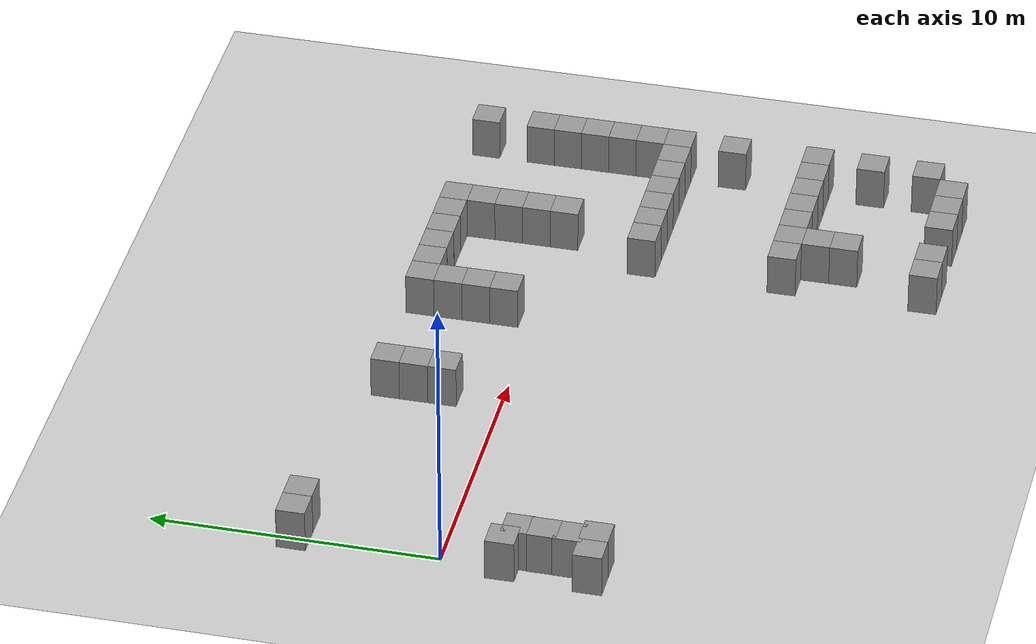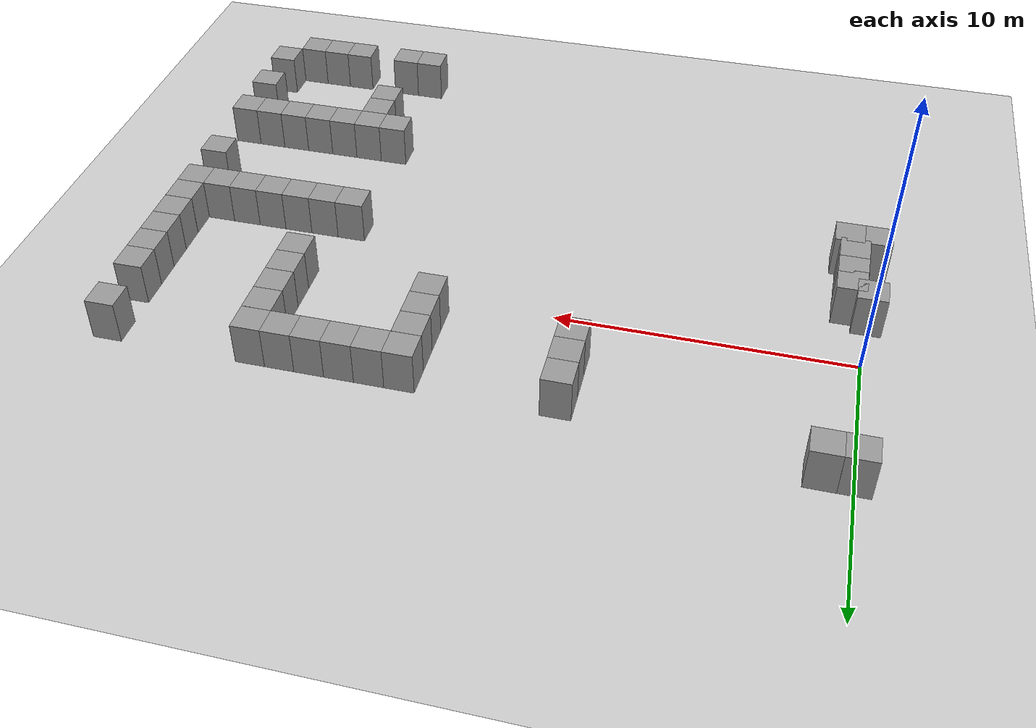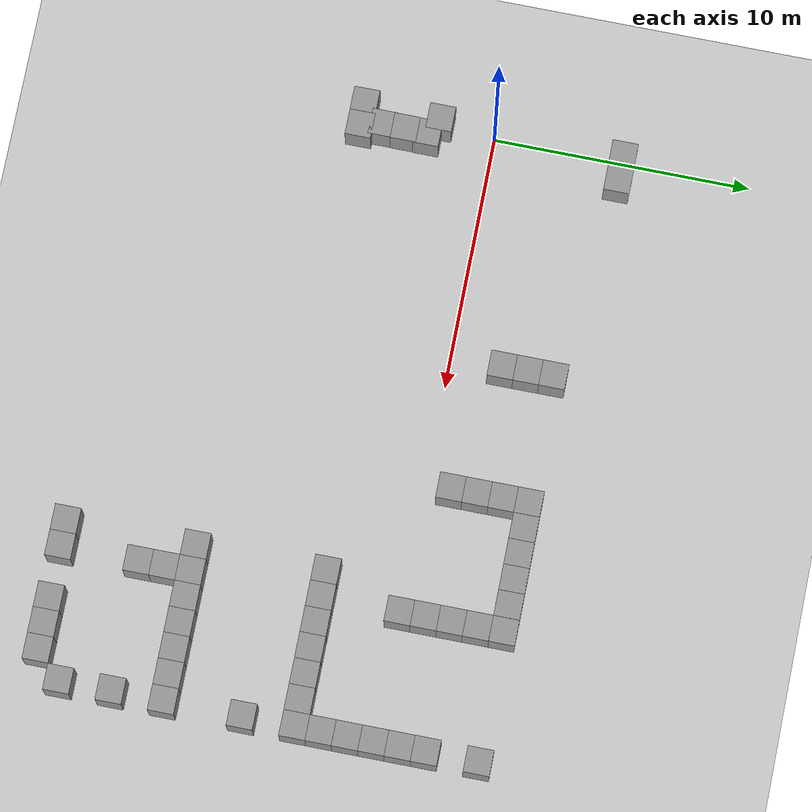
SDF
<sdf version="1.4">
 <world name="default">
  <model name="ground_plane">
   <static>1</static>
   <link name="link">
    <collision name="collision">
     <geometry><plane><normal>0 0 1</normal><size>100 100</size></plane></geometry>
     <surface><friction><ode><mu>100</mu><mu2>50</mu2></ode></friction></surface>
    </collision>
    <visual name="visual">
     <cast_shadows>0</cast_shadows>
     <geometry><plane><normal>0 0 1</normal><size>100 100</size></plane></geometry>
     <material>
      <script><uri>file://media/materials/scripts/gazebo.material</uri><name>Gazebo/Grey</name></script>
     </material>
    </visual>
    <velocity_decay><linear>0</linear><angular>0</angular></velocity_decay>
   </link>
  </model>
  <model name="unit_box_6">
   <pose>-0.01622 4.99333 0.5 0 0 -0.000328</pose>
   <static>1</static>
   <link name="link">
    <inertial>
     <mass>1</mass>
     <inertia><ixx>1</ixx><ixy>0</ixy><ixz>0</ixz><iyy>1</iyy><iyz>0</iyz><izz>1</izz></inertia>
    </inertial>
    <collision name="collision"><geometry><box><size>1 1 2</size></box></geometry></collision>
    <visual name="visual">
     <geometry><box><size>1 1 2</size></box></geometry>
     <material>
      <script><uri>file://media/materials/scripts/gazebo.material</uri><name>Gazebo/Grey</name></script>
     </material>
    </visual>
    <velocity_decay><linear>0</linear><angular>0</angular></velocity_decay>
   </link>
   <static>0</static>
  </model>
  <model name="unit_box_7">
   <pose>0.984482 4.99573 0.5 0 0 -0.000753</pose>
   <static>1</static>
   <link name="link">
    <inertial>
     <mass>1</mass>
     <inertia><ixx>1</ixx><ixy>0</ixy><ixz>0</ixz><iyy>1</iyy><iyz>0</iyz><izz>1</izz></inertia>
    </inertial>
    <collision name="collision"><geometry><box><size>1 1 2</size></box></geometry></collision>
    <visual name="visual">
     <geometry><box><size>1 1 2</size></box></geometry>
     <material>
      <script><uri>file://media/materials/scripts/gazebo.material</uri><name>Gazebo/Grey</name></script>
     </material>
    </visual>
    <velocity_decay><linear>0</linear><angular>0</angular></velocity_decay>
   </link>
   <static>0</static>
  </model>
  <model name="unit_box_9">
   <pose>-0.110008 -2.15315 0.5 0 0 -0.000565</pose>
   <static>1</static>
   <link name="link">
    <inertial>
     <mass>1</mass>
     <inertia><ixx>1</ixx><ixy>0</ixy><ixz>0</ixz><iyy>1</iyy><iyz>0</iyz><izz>1</izz></inertia>
    </inertial>
    <collision name="collision"><geometry><box><size>1 1 2</size></box></geometry></collision>
    <visual name="visual">
     <geometry><box><size>1 1 2</size></box></geometry>
     <material>
      <script><uri>file://media/materials/scripts/gazebo.material</uri><name>Gazebo/Grey</name></script>
     </material>
    </visual>
    <velocity_decay><linear>0</linear><angular>0</angular></velocity_decay>
   </link>
   <static>0</static>
  </model>
  <model name="unit_box_29">
   <pose>0.538897 -4.28868 0.5 0 0 -1.1e-05</pose>
   <static>1</static>
   <link name="link">
    <inertial>
     <mass>1</mass>
     <inertia><ixx>1</ixx><ixy>0</ixy><ixz>0</ixz><iyy>1</iyy><iyz>0</iyz><izz>1</izz></inertia>
    </inertial>
    <collision name="collision"><geometry><box><size>1 1 2</size></box></geometry></collision>
    <visual name="visual">
     <geometry><box><size>1 1 2</size></box></geometry>
     <material>
      <script><uri>file://media/materials/scripts/gazebo.material</uri><name>Gazebo/Grey</name></script>
     </material>
    </visual>
    <velocity_decay><linear>0</linear><angular>0</angular></velocity_decay>
   </link>
   <static>0</static>
  </model>
  <model name="unit_box_30">
   <pose>8.99995 1.99999 0.5 0 0 -7e-06</pose>
   <static>1</static>
   <link name="link">
    <inertial>
     <mass>1</mass>
     <inertia><ixx>1</ixx><ixy>0</ixy><ixz>0</ixz><iyy>1</iyy><iyz>0</iyz><izz>1</izz></inertia>
    </inertial>
    <collision name="collision"><geometry><box><size>1 1 2</size></box></geometry></collision>
    <visual name="visual">
     <geometry><box><size>1 1 2</size></box></geometry>
     <material>
      <script><uri>file://media/materials/scripts/gazebo.material</uri><name>Gazebo/Grey</name></script>
     </material>
    </visual>
    <velocity_decay><linear>0</linear><angular>0</angular></velocity_decay>
   </link>
   <static>0</static>
  </model>
  <model name="unit_box_31">
   <pose>8.99997 3 0.5 0 0 -6e-06</pose>
   <static>1</static>
   <link name="link">
    <inertial>
     <mass>1</mass>
     <inertia><ixx>1</ixx><ixy>0</ixy><ixz>0</ixz><iyy>1</iyy><iyz>0</iyz><izz>1</izz></inertia>
    </inertial>
    <collision name="collision"><geometry><box><size>1 1 2</size></box></geometry></collision>
    <visual name="visual">
     <geometry><box><size>1 1 2</size></box></geometry>
     <material>
      <script><uri>file://media/materials/scripts/gazebo.material</uri><name>Gazebo/Grey</name></script>
     </material>
    </visual>
    <velocity_decay><linear>0</linear><angular>0</angular></velocity_decay>
   </link>
   <static>0</static>
  </model>
  <model name="unit_box_32">
   <pose>8.99997 4 0.5 0 0 -8e-06</pose>
   <static>1</static>
   <link name="link">
    <inertial>
     <mass>1</mass>
     <inertia><ixx>1</ixx><ixy>0</ixy><ixz>0</ixz><iyy>1</iyy><iyz>0</iyz><izz>1</izz></inertia>
    </inertial>
    <collision name="collision"><geometry><box><size>1 1 2</size></box></geometry></collision>
    <visual name="visual">
     <geometry><box><size>1 1 2</size></box></geometry>
     <material>
      <script><uri>file://media/materials/scripts/gazebo.material</uri><name>Gazebo/Grey</name></script>
     </material>
    </visual>
    <velocity_decay><linear>0</linear><angular>0</angular></velocity_decay>
   </link>
   <static>0</static>
  </model>
  <model name="unit_box_41">
   <pose>0.563643 -2.53694 0.5 0 -0 0.002598</pose>
   <static>1</static>
   <link name="link">
    <inertial>
     <mass>1</mass>
     <inertia><ixx>1</ixx><ixy>0</ixy><ixz>0</ixz><iyy>1</iyy><iyz>0</iyz><izz>1</izz></inertia>
    </inertial>
    <collision name="collision"><geometry><box><size>1 1 2</size></box></geometry></collision>
    <visual name="visual">
     <geometry><box><size>1 1 2</size></box></geometry>
     <material>
      <script><uri>file://media/materials/scripts/gazebo.material</uri><name>Gazebo/Grey</name></script>
     </material>
    </visual>
    <velocity_decay><linear>0</linear><angular>0</angular></velocity_decay>
   </link>
   <static>0</static>
  </model>
  <model name="unit_box_129">
   <pose>0.548345 -3.41757 0.5 0 0 -1.3e-05</pose>
   <static>1</static>
   <link name="link">
    <inertial>
     <mass>1</mass>
     <inertia><ixx>1</ixx><ixy>0</ixy><ixz>0</ixz><iyy>1</iyy><iyz>0</iyz><izz>1</izz></inertia>
    </inertial>
    <collision name="collision"><geometry><box><size>1 1 2</size></box></geometry></collision>
    <visual name="visual">
     <geometry><box><size>1 1 2</size></box></geometry>
     <material>
      <script><uri>file://media/materials/scripts/gazebo.material</uri><name>Gazebo/Grey</name></script>
     </material>
    </visual>
    <velocity_decay><linear>0</linear><angular>0</angular></velocity_decay>
   </link>
   <static>0</static>
  </model>
  <model name="unit_box_173">
   <pose>13.9973 3.99985 0.5 0 -0 0.000731</pose>
   <static>1</static>
   <link name="link">
    <inertial>
     <mass>1</mass>
     <inertia><ixx>1</ixx><ixy>0</ixy><ixz>0</ixz><iyy>1</iyy><iyz>0</iyz><izz>1</izz></inertia>
    </inertial>
    <collision name="collision"><geometry><box><size>1 1 2</size></box></geometry></collision>
    <visual name="visual">
     <geometry><box><size>1 1 2</size></box></geometry>
     <material>
      <script><uri>file://media/materials/scripts/gazebo.material</uri><name>Gazebo/Grey</name></script>
     </material>
    </visual>
    <velocity_decay><linear>0</linear><angular>0</angular></velocity_decay>
   </link>
   <static>0</static>
  </model>
  <model name="unit_box_174">
   <pose>13.9996 2.99959 0.5 0 -0 0.000224</pose>
   <static>1</static>
   <link name="link">
    <inertial>
     <mass>1</mass>
     <inertia><ixx>1</ixx><ixy>0</ixy><ixz>0</ixz><iyy>1</iyy><iyz>0</iyz><izz>1</izz></inertia>
    </inertial>
    <collision name="collision"><geometry><box><size>1 1 2</size></box></geometry></collision>
    <visual name="visual">
     <geometry><box><size>1 1 2</size></box></geometry>
     <material>
      <script><uri>file://media/materials/scripts/gazebo.material</uri><name>Gazebo/Grey</name></script>
     </material>
    </visual>
    <velocity_decay><linear>0</linear><angular>0</angular></velocity_decay>
   </link>
   <static>0</static>
  </model>
  <model name="unit_box_175">
   <pose>13.9999 1.99957 0.5 0 -0 0.000199</pose>
   <static>1</static>
   <link name="link">
    <inertial>
     <mass>1</mass>
     <inertia><ixx>1</ixx><ixy>0</ixy><ixz>0</ixz><iyy>1</iyy><iyz>0</iyz><izz>1</izz></inertia>
    </inertial>
    <collision name="collision"><geometry><box><size>1 1 2</size></box></geometry></collision>
    <visual name="visual">
     <geometry><box><size>1 1 2</size></box></geometry>
     <material>
      <script><uri>file://media/materials/scripts/gazebo.material</uri><name>Gazebo/Grey</name></script>
     </material>
    </visual>
    <velocity_decay><linear>0</linear><angular>0</angular></velocity_decay>
   </link>
   <static>0</static>
  </model>
  <model name="unit_box_176">
   <pose>14 0.999522 0.5 0 -0 9.7e-05</pose>
   <static>1</static>
   <link name="link">
    <inertial>
     <mass>1</mass>
     <inertia><ixx>1</ixx><ixy>0</ixy><ixz>0</ixz><iyy>1</iyy><iyz>0</iyz><izz>1</izz></inertia>
    </inertial>
    <collision name="collision"><geometry><box><size>1 1 2</size></box></geometry></collision>
    <visual name="visual">
     <geometry><box><size>1 1 2</size></box></geometry>
     <material>
      <script><uri>file://media/materials/scripts/gazebo.material</uri><name>Gazebo/Grey</name></script>
     </material>
    </visual>
    <velocity_decay><linear>0</linear><angular>0</angular></velocity_decay>
   </link>
   <static>0</static>
  </model>
  <model name="unit_box_177">
   <pose>14.9974 4.00019 0.5 0 -0 0.000926</pose>
   <static>1</static>
   <link name="link">
    <inertial>
     <mass>1</mass>
     <inertia><ixx>1</ixx><ixy>0</ixy><ixz>0</ixz><iyy>1</iyy><iyz>0</iyz><izz>1</izz></inertia>
    </inertial>
    <collision name="collision"><geometry><box><size>1 1 2</size></box></geometry></collision>
    <visual name="visual">
     <geometry><box><size>1 1 2</size></box></geometry>
     <material>
      <script><uri>file://media/materials/scripts/gazebo.material</uri><name>Gazebo/Grey</name></script>
     </material>
    </visual>
    <velocity_decay><linear>0</linear><angular>0</angular></velocity_decay>
   </link>
   <static>0</static>
  </model>
  <model name="unit_box_178">
   <pose>15.9974 4.00015 0.5 0 -0 0.001009</pose>
   <static>1</static>
   <link name="link">
    <inertial>
     <mass>1</mass>
     <inertia><ixx>1</ixx><ixy>0</ixy><ixz>0</ixz><iyy>1</iyy><iyz>0</iyz><izz>1</izz></inertia>
    </inertial>
    <collision name="collision"><geometry><box><size>1 1 2</size></box></geometry></collision>
    <visual name="visual">
     <geometry><box><size>1 1 2</size></box></geometry>
     <material>
      <script><uri>file://media/materials/scripts/gazebo.material</uri><name>Gazebo/Grey</name></script>
     </material>
    </visual>
    <velocity_decay><linear>0</linear><angular>0</angular></velocity_decay>
   </link>
   <static>0</static>
  </model>
  <model name="unit_box_179">
   <pose>16.9975 3.99993 0.5 0 -0 0.001188</pose>
   <static>1</static>
   <link name="link">
    <inertial>
     <mass>1</mass>
     <inertia><ixx>1</ixx><ixy>0</ixy><ixz>0</ixz><iyy>1</iyy><iyz>0</iyz><izz>1</izz></inertia>
    </inertial>
    <collision name="collision"><geometry><box><size>1 1 2</size></box></geometry></collision>
    <visual name="visual">
     <geometry><box><size>1 1 2</size></box></geometry>
     <material>
      <script><uri>file://media/materials/scripts/gazebo.material</uri><name>Gazebo/Grey</name></script>
     </material>
    </visual>
    <velocity_decay><linear>0</linear><angular>0</angular></velocity_decay>
   </link>
   <static>0</static>
  </model>
  <model name="unit_box_180">
   <pose>17.9977 4.00059 0.5 0 -0 0.001689</pose>
   <static>1</static>
   <link name="link">
    <inertial>
     <mass>1</mass>
     <inertia><ixx>1</ixx><ixy>0</ixy><ixz>0</ixz><iyy>1</iyy><iyz>0</iyz><izz>1</izz></inertia>
    </inertial>
    <collision name="collision"><geometry><box><size>1 1 2</size></box></geometry></collision>
    <visual name="visual">
     <geometry><box><size>1 1 2</size></box></geometry>
     <material>
      <script><uri>file://media/materials/scripts/gazebo.material</uri><name>Gazebo/Grey</name></script>
     </material>
    </visual>
    <velocity_decay><linear>0</linear><angular>0</angular></velocity_decay>
   </link>
   <static>0</static>
  </model>
  <model name="unit_box_181">
   <pose>18.9984 4.00065 0.5 0 -0 0.002125</pose>
   <static>1</static>
   <link name="link">
    <inertial>
     <mass>1</mass>
     <inertia><ixx>1</ixx><ixy>0</ixy><ixz>0</ixz><iyy>1</iyy><iyz>0</iyz><izz>1</izz></inertia>
    </inertial>
    <collision name="collision"><geometry><box><size>1 1 2</size></box></geometry></collision>
    <visual name="visual">
     <geometry><box><size>1 1 2</size></box></geometry>
     <material>
      <script><uri>file://media/materials/scripts/gazebo.material</uri><name>Gazebo/Grey</name></script>
     </material>
    </visual>
    <velocity_decay><linear>0</linear><angular>0</angular></velocity_decay>
   </link>
   <static>0</static>
  </model>
  <model name="unit_box_182">
   <pose>24.0018 -0.999661 0.5 0 -0 7.7e-05</pose>
   <static>1</static>
   <link name="link">
    <inertial>
     <mass>1</mass>
     <inertia><ixx>1</ixx><ixy>0</ixy><ixz>0</ixz><iyy>1</iyy><iyz>0</iyz><izz>1</izz></inertia>
    </inertial>
    <collision name="collision"><geometry><box><size>1 1 2</size></box></geometry></collision>
    <visual name="visual">
     <geometry><box><size>1 1 2</size></box></geometry>
     <material>
      <script><uri>file://media/materials/scripts/gazebo.material</uri><name>Gazebo/Grey</name></script>
     </material>
    </visual>
    <velocity_decay><linear>0</linear><angular>0</angular></velocity_decay>
   </link>
   <static>0</static>
  </model>
  <model name="unit_box_195">
   <pose>24.0001 4.00041 0.5 0 -0 5.9e-05</pose>
   <static>1</static>
   <link name="link">
    <inertial>
     <mass>1</mass>
     <inertia><ixx>1</ixx><ixy>0</ixy><ixz>0</ixz><iyy>1</iyy><iyz>0</iyz><izz>1</izz></inertia>
    </inertial>
    <collision name="collision"><geometry><box><size>1 1 2</size></box></geometry></collision>
    <visual name="visual">
     <geometry><box><size>1 1 2</size></box></geometry>
     <material>
      <script><uri>file://media/materials/scripts/gazebo.material</uri><name>Gazebo/Grey</name></script>
     </material>
    </visual>
    <velocity_decay><linear>0</linear><angular>0</angular></velocity_decay>
   </link>
   <static>0</static>
  </model>
  <model name="unit_box_197">
   <pose>23.9999 2.00038 0.5 0 -0 6.3e-05</pose>
   <static>1</static>
   <link name="link">
    <inertial>
     <mass>1</mass>
     <inertia><ixx>1</ixx><ixy>0</ixy><ixz>0</ixz><iyy>1</iyy><iyz>0</iyz><izz>1</izz></inertia>
    </inertial>
    <collision name="collision"><geometry><box><size>1 1 2</size></box></geometry></collision>
    <visual name="visual">
     <geometry><box><size>1 1 2</size></box></geometry>
     <material>
      <script><uri>file://media/materials/scripts/gazebo.material</uri><name>Gazebo/Grey</name></script>
     </material>
    </visual>
    <velocity_decay><linear>0</linear><angular>0</angular></velocity_decay>
   </link>
   <static>0</static>
  </model>
  <model name="unit_box_198">
   <pose>23.9999 1.00035 0.5 0 -0 7.1e-05</pose>
   <static>1</static>
   <link name="link">
    <inertial>
     <mass>1</mass>
     <inertia><ixx>1</ixx><ixy>0</ixy><ixz>0</ixz><iyy>1</iyy><iyz>0</iyz><izz>1</izz></inertia>
    </inertial>
    <collision name="collision"><geometry><box><size>1 1 2</size></box></geometry></collision>
    <visual name="visual">
     <geometry><box><size>1 1 2</size></box></geometry>
     <material>
      <script><uri>file://media/materials/scripts/gazebo.material</uri><name>Gazebo/Grey</name></script>
     </material>
    </visual>
    <velocity_decay><linear>0</linear><angular>0</angular></velocity_decay>
   </link>
   <static>0</static>
  </model>
  <model name="unit_box_199">
   <pose>23.9997 0.000344 0.5 0 -0 7.4e-05</pose>
   <static>1</static>
   <link name="link">
    <inertial>
     <mass>1</mass>
     <inertia><ixx>1</ixx><ixy>0</ixy><ixz>0</ixz><iyy>1</iyy><iyz>0</iyz><izz>1</izz></inertia>
    </inertial>
    <collision name="collision"><geometry><box><size>1 1 2</size></box></geometry></collision>
    <visual name="visual">
     <geometry><box><size>1 1 2</size></box></geometry>
     <material>
      <script><uri>file://media/materials/scripts/gazebo.material</uri><name>Gazebo/Grey</name></script>
     </material>
    </visual>
    <velocity_decay><linear>0</linear><angular>0</angular></velocity_decay>
   </link>
   <static>0</static>
  </model>
  <model name="unit_box_200">
   <pose>19 2.9997 0.5 0 -0 0.000228</pose>
   <static>1</static>
   <link name="link">
    <inertial>
     <mass>1</mass>
     <inertia><ixx>1</ixx><ixy>0</ixy><ixz>0</ixz><iyy>1</iyy><iyz>0</iyz><izz>1</izz></inertia>
    </inertial>
    <collision name="collision"><geometry><box><size>1 1 2</size></box></geometry></collision>
    <visual name="visual">
     <geometry><box><size>1 1 2</size></box></geometry>
     <material>
      <script><uri>file://media/materials/scripts/gazebo.material</uri><name>Gazebo/Grey</name></script>
     </material>
    </visual>
    <velocity_decay><linear>0</linear><angular>0</angular></velocity_decay>
   </link>
   <static>0</static>
  </model>
  <model name="unit_box_201">
   <pose>19 1.99966 0.5 0 -0 0.000143</pose>
   <static>1</static>
   <link name="link">
    <inertial>
     <mass>1</mass>
     <inertia><ixx>1</ixx><ixy>0</ixy><ixz>0</ixz><iyy>1</iyy><iyz>0</iyz><izz>1</izz></inertia>
    </inertial>
    <collision name="collision"><geometry><box><size>1 1 2</size></box></geometry></collision>
    <visual name="visual">
     <geometry><box><size>1 1 2</size></box></geometry>
     <material>
      <script><uri>file://media/materials/scripts/gazebo.material</uri><name>Gazebo/Grey</name></script>
     </material>
    </visual>
    <velocity_decay><linear>0</linear><angular>0</angular></velocity_decay>
   </link>
   <static>0</static>
  </model>
  <model name="unit_box_202">
   <pose>19 0.999639 0.5 0 -0 0.00011</pose>
   <static>1</static>
   <link name="link">
    <inertial>
     <mass>1</mass>
     <inertia><ixx>1</ixx><ixy>0</ixy><ixz>0</ixz><iyy>1</iyy><iyz>0</iyz><izz>1</izz></inertia>
    </inertial>
    <collision name="collision"><geometry><box><size>1 1 2</size></box></geometry></collision>
    <visual name="visual">
     <geometry><box><size>1 1 2</size></box></geometry>
     <material>
      <script><uri>file://media/materials/scripts/gazebo.material</uri><name>Gazebo/Grey</name></script>
     </material>
    </visual>
    <velocity_decay><linear>0</linear><angular>0</angular></velocity_decay>
   </link>
   <static>0</static>
  </model>
  <model name="unit_box_203">
   <pose>19 -0.000365 0.5 0 -0 0.000106</pose>
   <static>1</static>
   <link name="link">
    <inertial>
     <mass>1</mass>
     <inertia><ixx>1</ixx><ixy>0</ixy><ixz>0</ixz><iyy>1</iyy><iyz>0</iyz><izz>1</izz></inertia>
    </inertial>
    <collision name="collision"><geometry><box><size>1 1 2</size></box></geometry></collision>
    <visual name="visual">
     <geometry><box><size>1 1 2</size></box></geometry>
     <material>
      <script><uri>file://media/materials/scripts/gazebo.material</uri><name>Gazebo/Grey</name></script>
     </material>
    </visual>
    <velocity_decay><linear>0</linear><angular>0</angular></velocity_decay>
   </link>
   <static>0</static>
  </model>
  <model name="unit_box_204">
   <pose>24 -1.99999 0.5 0 -0 1e-06</pose>
   <static>1</static>
   <link name="link">
    <inertial>
     <mass>1</mass>
     <inertia><ixx>1</ixx><ixy>0</ixy><ixz>0</ixz><iyy>1</iyy><iyz>0</iyz><izz>1</izz></inertia>
    </inertial>
    <collision name="collision"><geometry><box><size>1 1 2</size></box></geometry></collision>
    <visual name="visual">
     <geometry><box><size>1 1 2</size></box></geometry>
     <material>
      <script><uri>file://media/materials/scripts/gazebo.material</uri><name>Gazebo/Grey</name></script>
     </material>
    </visual>
    <velocity_decay><linear>0</linear><angular>0</angular></velocity_decay>
   </link>
   <static>0</static>
  </model>
  <model name="unit_box_205">
   <pose>24 -2.99999 0.5 0 -0 1e-06</pose>
   <static>1</static>
   <link name="link">
    <inertial>
     <mass>1</mass>
     <inertia><ixx>1</ixx><ixy>0</ixy><ixz>0</ixz><iyy>1</iyy><iyz>0</iyz><izz>1</izz></inertia>
    </inertial>
    <collision name="collision"><geometry><box><size>1 1 2</size></box></geometry></collision>
    <visual name="visual">
     <geometry><box><size>1 1 2</size></box></geometry>
     <material>
      <script><uri>file://media/materials/scripts/gazebo.material</uri><name>Gazebo/Grey</name></script>
     </material>
    </visual>
    <velocity_decay><linear>0</linear><angular>0</angular></velocity_decay>
   </link>
   <static>0</static>
  </model>
  <model name="unit_box_207">
   <pose>24 -4.99999 0.5 0 0 -1e-06</pose>
   <static>1</static>
   <link name="link">
    <inertial>
     <mass>1</mass>
     <inertia><ixx>1</ixx><ixy>0</ixy><ixz>0</ixz><iyy>1</iyy><iyz>0</iyz><izz>1</izz></inertia>
    </inertial>
    <collision name="collision"><geometry><box><size>1 1 2</size></box></geometry></collision>
    <visual name="visual">
     <geometry><box><size>1 1 2</size></box></geometry>
     <material>
      <script><uri>file://media/materials/scripts/gazebo.material</uri><name>Gazebo/Grey</name></script>
     </material>
    </visual>
    <velocity_decay><linear>0</linear><angular>0</angular></velocity_decay>
   </link>
   <static>0</static>
  </model>
  <model name="unit_box_209">
   <pose>18 -3 0.5 0 0 -2e-06</pose>
   <static>1</static>
   <link name="link">
    <inertial>
     <mass>1</mass>
     <inertia><ixx>1</ixx><ixy>0</ixy><ixz>0</ixz><iyy>1</iyy><iyz>0</iyz><izz>1</izz></inertia>
    </inertial>
    <collision name="collision"><geometry><box><size>1 1 2</size></box></geometry></collision>
    <visual name="visual">
     <geometry><box><size>1 1 2</size></box></geometry>
     <material>
      <script><uri>file://media/materials/scripts/gazebo.material</uri><name>Gazebo/Grey</name></script>
     </material>
    </visual>
    <velocity_decay><linear>0</linear><angular>0</angular></velocity_decay>
   </link>
   <static>0</static>
  </model>
  <model name="unit_box_210">
   <pose>19 -3 0.5 0 0 -2e-06</pose>
   <static>1</static>
   <link name="link">
    <inertial>
     <mass>1</mass>
     <inertia><ixx>1</ixx><ixy>0</ixy><ixz>0</ixz><iyy>1</iyy><iyz>0</iyz><izz>1</izz></inertia>
    </inertial>
    <collision name="collision"><geometry><box><size>1 1 2</size></box></geometry></collision>
    <visual name="visual">
     <geometry><box><size>1 1 2</size></box></geometry>
     <material>
      <script><uri>file://media/materials/scripts/gazebo.material</uri><name>Gazebo/Grey</name></script>
     </material>
    </visual>
    <velocity_decay><linear>0</linear><angular>0</angular></velocity_decay>
   </link>
   <static>0</static>
  </model>
  <model name="unit_box_211">
   <pose>20 -3 0.5 0 0 -2e-06</pose>
   <static>1</static>
   <link name="link">
    <inertial>
     <mass>1</mass>
     <inertia><ixx>1</ixx><ixy>0</ixy><ixz>0</ixz><iyy>1</iyy><iyz>0</iyz><izz>1</izz></inertia>
    </inertial>
    <collision name="collision"><geometry><box><size>1 1 2</size></box></geometry></collision>
    <visual name="visual">
     <geometry><box><size>1 1 2</size></box></geometry>
     <material>
      <script><uri>file://media/materials/scripts/gazebo.material</uri><name>Gazebo/Grey</name></script>
     </material>
    </visual>
    <velocity_decay><linear>0</linear><angular>0</angular></velocity_decay>
   </link>
   <static>0</static>
  </model>
  <model name="unit_box_212">
   <pose>21 -3 0.5 0 0 -3e-06</pose>
   <static>1</static>
   <link name="link">
    <inertial>
     <mass>1</mass>
     <inertia><ixx>1</ixx><ixy>0</ixy><ixz>0</ixz><iyy>1</iyy><iyz>0</iyz><izz>1</izz></inertia>
    </inertial>
    <collision name="collision"><geometry><box><size>1 1 2</size></box></geometry></collision>
    <visual name="visual">
     <geometry><box><size>1 1 2</size></box></geometry>
     <material>
      <script><uri>file://media/materials/scripts/gazebo.material</uri><name>Gazebo/Grey</name></script>
     </material>
    </visual>
    <velocity_decay><linear>0</linear><angular>0</angular></velocity_decay>
   </link>
   <static>0</static>
  </model>
  <model name="unit_box_213">
   <pose>22 -3 0.5 0 0 -3e-06</pose>
   <static>1</static>
   <link name="link">
    <inertial>
     <mass>1</mass>
     <inertia><ixx>1</ixx><ixy>0</ixy><ixz>0</ixz><iyy>1</iyy><iyz>0</iyz><izz>1</izz></inertia>
    </inertial>
    <collision name="collision"><geometry><box><size>1 1 2</size></box></geometry></collision>
    <visual name="visual">
     <geometry><box><size>1 1 2</size></box></geometry>
     <material>
      <script><uri>file://media/materials/scripts/gazebo.material</uri><name>Gazebo/Grey</name></script>
     </material>
    </visual>
    <velocity_decay><linear>0</linear><angular>0</angular></velocity_decay>
   </link>
   <static>0</static>
  </model>
  <model name="unit_box_214">
   <pose>23 -3 0.5 0 0 -3e-06</pose>
   <static>1</static>
   <link name="link">
    <inertial>
     <mass>1</mass>
     <inertia><ixx>1</ixx><ixy>0</ixy><ixz>0</ixz><iyy>1</iyy><iyz>0</iyz><izz>1</izz></inertia>
    </inertial>
    <collision name="collision"><geometry><box><size>1 1 2</size></box></geometry></collision>
    <visual name="visual">
     <geometry><box><size>1 1 2</size></box></geometry>
     <material>
      <script><uri>file://media/materials/scripts/gazebo.material</uri><name>Gazebo/Grey</name></script>
     </material>
    </visual>
    <velocity_decay><linear>0</linear><angular>0</angular></velocity_decay>
   </link>
   <static>0</static>
  </model>
  <model name="unit_box_216">
   <pose>24 -8 0.5 0 0 -3e-06</pose>
   <static>1</static>
   <link name="link">
    <inertial>
     <mass>1</mass>
     <inertia><ixx>1</ixx><ixy>0</ixy><ixz>0</ixz><iyy>1</iyy><iyz>0</iyz><izz>1</izz></inertia>
    </inertial>
    <collision name="collision"><geometry><box><size>1 1 2</size></box></geometry></collision>
    <visual name="visual">
     <geometry><box><size>1 1 2</size></box></geometry>
     <material>
      <script><uri>file://media/materials/scripts/gazebo.material</uri><name>Gazebo/Grey</name></script>
     </material>
    </visual>
    <velocity_decay><linear>0</linear><angular>0</angular></velocity_decay>
   </link>
   <static>0</static>
  </model>
  <model name="unit_box_217">
   <pose>23 -8 0.5 0 -0 0</pose>
   <static>1</static>
   <link name="link">
    <inertial>
     <mass>1</mass>
     <inertia><ixx>1</ixx><ixy>0</ixy><ixz>0</ixz><iyy>1</iyy><iyz>0</iyz><izz>1</izz></inertia>
    </inertial>
    <collision name="collision"><geometry><box><size>1 1 2</size></box></geometry></collision>
    <visual name="visual">
     <geometry><box><size>1 1 2</size></box></geometry>
     <material>
      <script><uri>file://media/materials/scripts/gazebo.material</uri><name>Gazebo/Grey</name></script>
     </material>
    </visual>
    <velocity_decay><linear>0</linear><angular>0</angular></velocity_decay>
   </link>
   <static>0</static>
  </model>
  <model name="unit_box_218">
   <pose>22 -8.00001 0.5 0 0 -1e-06</pose>
   <static>1</static>
   <link name="link">
    <inertial>
     <mass>1</mass>
     <inertia><ixx>1</ixx><ixy>0</ixy><ixz>0</ixz><iyy>1</iyy><iyz>0</iyz><izz>1</izz></inertia>
    </inertial>
    <collision name="collision"><geometry><box><size>1 1 2</size></box></geometry></collision>
    <visual name="visual">
     <geometry><box><size>1 1 2</size></box></geometry>
     <material>
      <script><uri>file://media/materials/scripts/gazebo.material</uri><name>Gazebo/Grey</name></script>
     </material>
    </visual>
    <velocity_decay><linear>0</linear><angular>0</angular></velocity_decay>
   </link>
   <static>0</static>
  </model>
  <model name="unit_box_219">
   <pose>21 -8 0.5 0 0 -1e-06</pose>
   <static>1</static>
   <link name="link">
    <inertial>
     <mass>1</mass>
     <inertia><ixx>1</ixx><ixy>0</ixy><ixz>0</ixz><iyy>1</iyy><iyz>0</iyz><izz>1</izz></inertia>
    </inertial>
    <collision name="collision"><geometry><box><size>1 1 2</size></box></geometry></collision>
    <visual name="visual">
     <geometry><box><size>1 1 2</size></box></geometry>
     <material>
      <script><uri>file://media/materials/scripts/gazebo.material</uri><name>Gazebo/Grey</name></script>
     </material>
    </visual>
    <velocity_decay><linear>0</linear><angular>0</angular></velocity_decay>
   </link>
   <static>0</static>
  </model>
  <model name="unit_box_220">
   <pose>20 -8 0.500001 1e-06 -0 -1e-06</pose>
   <static>1</static>
   <link name="link">
    <inertial>
     <mass>1</mass>
     <inertia><ixx>1</ixx><ixy>0</ixy><ixz>0</ixz><iyy>1</iyy><iyz>0</iyz><izz>1</izz></inertia>
    </inertial>
    <collision name="collision"><geometry><box><size>1 1 2</size></box></geometry></collision>
    <visual name="visual">
     <geometry><box><size>1 1 2</size></box></geometry>
     <material>
      <script><uri>file://media/materials/scripts/gazebo.material</uri><name>Gazebo/Grey</name></script>
     </material>
    </visual>
    <velocity_decay><linear>0</linear><angular>0</angular></velocity_decay>
   </link>
   <static>0</static>
  </model>
  <model name="unit_box_221">
   <pose>19 -7.99999 0.5 0 -1e-06 -4e-06</pose>
   <static>1</static>
   <link name="link">
    <inertial>
     <mass>1</mass>
     <inertia><ixx>1</ixx><ixy>0</ixy><ixz>0</ixz><iyy>1</iyy><iyz>0</iyz><izz>1</izz></inertia>
    </inertial>
    <collision name="collision"><geometry><box><size>1 1 2</size></box></geometry></collision>
    <visual name="visual">
     <geometry><box><size>1 1 2</size></box></geometry>
     <material>
      <script><uri>file://media/materials/scripts/gazebo.material</uri><name>Gazebo/Grey</name></script>
     </material>
    </visual>
    <velocity_decay><linear>0</linear><angular>0</angular></velocity_decay>
   </link>
   <static>0</static>
  </model>
  <model name="unit_box_222">
   <pose>18 -8.00001 0.5 0 0 -2e-06</pose>
   <static>1</static>
   <link name="link">
    <inertial>
     <mass>1</mass>
     <inertia><ixx>1</ixx><ixy>0</ixy><ixz>0</ixz><iyy>1</iyy><iyz>0</iyz><izz>1</izz></inertia>
    </inertial>
    <collision name="collision"><geometry><box><size>1 1 2</size></box></geometry></collision>
    <visual name="visual">
     <geometry><box><size>1 1 2</size></box></geometry>
     <material>
      <script><uri>file://media/materials/scripts/gazebo.material</uri><name>Gazebo/Grey</name></script>
     </material>
    </visual>
    <velocity_decay><linear>0</linear><angular>0</angular></velocity_decay>
   </link>
   <static>0</static>
  </model>
  <model name="unit_box_266">
   <pose>-0.189297 -5.14432 0.499992 1e-06 3.23117e-27 -8e-06</pose>
   <static>1</static>
   <link name="link">
    <inertial>
     <mass>1</mass>
     <inertia><ixx>1</ixx><ixy>0</ixy><ixz>0</ixz><iyy>1</iyy><iyz>0</iyz><izz>1</izz></inertia>
    </inertial>
    <collision name="collision"><geometry><box><size>1 1 2</size></box></geometry></collision>
    <visual name="visual">
     <geometry><box><size>1 1 2</size></box></geometry>
     <material>
      <script><uri>file://media/materials/scripts/gazebo.material</uri><name>Gazebo/Grey</name></script>
     </material>
    </visual>
    <velocity_decay><linear>0</linear><angular>0</angular></velocity_decay>
   </link>
   <static>0</static>
  </model>
  <model name="unit_box_267">
   <pose>0.734843 -5.14501 0.5 0 0 -8e-06</pose>
   <static>1</static>
   <link name="link">
    <inertial>
     <mass>1</mass>
     <inertia><ixx>1</ixx><ixy>0</ixy><ixz>0</ixz><iyy>1</iyy><iyz>0</iyz><izz>1</izz></inertia>
    </inertial>
    <collision name="collision"><geometry><box><size>1 1 2</size></box></geometry></collision>
    <visual name="visual">
     <geometry><box><size>1 1 2</size></box></geometry>
     <material>
      <script><uri>file://media/materials/scripts/gazebo.material</uri><name>Gazebo/Grey</name></script>
     </material>
    </visual>
    <velocity_decay><linear>0</linear><angular>0</angular></velocity_decay>
   </link>
   <static>0</static>
  </model>
  <model name="unit_box_271">
   <pose>19 -9 0.5 0 0 -4e-06</pose>
   <static>1</static>
   <link name="link">
    <inertial>
     <mass>1</mass>
     <inertia><ixx>1</ixx><ixy>0</ixy><ixz>0</ixz><iyy>1</iyy><iyz>0</iyz><izz>1</izz></inertia>
    </inertial>
    <collision name="collision"><geometry><box><size>1 1 2</size></box></geometry></collision>
    <visual name="visual">
     <geometry><box><size>1 1 2</size></box></geometry>
     <material>
      <script><uri>file://media/materials/scripts/gazebo.material</uri><name>Gazebo/Grey</name></script>
     </material>
    </visual>
    <velocity_decay><linear>0</linear><angular>0</angular></velocity_decay>
   </link>
   <static>0</static>
  </model>
  <model name="unit_box_272">
   <pose>19 -10 0.5 0 0 -5e-06</pose>
   <static>1</static>
   <link name="link">
    <inertial>
     <mass>1</mass>
     <inertia><ixx>1</ixx><ixy>0</ixy><ixz>0</ixz><iyy>1</iyy><iyz>0</iyz><izz>1</izz></inertia>
    </inertial>
    <collision name="collision"><geometry><box><size>1 1 2</size></box></geometry></collision>
    <visual name="visual">
     <geometry><box><size>1 1 2</size></box></geometry>
     <material>
      <script><uri>file://media/materials/scripts/gazebo.material</uri><name>Gazebo/Grey</name></script>
     </material>
    </visual>
    <velocity_decay><linear>0</linear><angular>0</angular></velocity_decay>
   </link>
   <static>0</static>
  </model>
  <model name="unit_box_275">
   <pose>24 -10 0.5 0 0 -6e-06</pose>
   <static>1</static>
   <link name="link">
    <inertial>
     <mass>1</mass>
     <inertia><ixx>1</ixx><ixy>0</ixy><ixz>0</ixz><iyy>1</iyy><iyz>0</iyz><izz>1</izz></inertia>
    </inertial>
    <collision name="collision"><geometry><box><size>1 1 2</size></box></geometry></collision>
    <visual name="visual">
     <geometry><box><size>1 1 2</size></box></geometry>
     <material>
      <script><uri>file://media/materials/scripts/gazebo.material</uri><name>Gazebo/Grey</name></script>
     </material>
    </visual>
    <velocity_decay><linear>0</linear><angular>0</angular></velocity_decay>
   </link>
   <static>0</static>
  </model>
  <model name="unit_box_277">
   <pose>24 -12 0.5 0 0 -4e-06</pose>
   <static>1</static>
   <link name="link">
    <inertial>
     <mass>1</mass>
     <inertia><ixx>1</ixx><ixy>0</ixy><ixz>0</ixz><iyy>1</iyy><iyz>0</iyz><izz>1</izz></inertia>
    </inertial>
    <collision name="collision"><geometry><box><size>1 1 2</size></box></geometry></collision>
    <visual name="visual">
     <geometry><box><size>1 1 2</size></box></geometry>
     <material>
      <script><uri>file://media/materials/scripts/gazebo.material</uri><name>Gazebo/Grey</name></script>
     </material>
    </visual>
    <velocity_decay><linear>0</linear><angular>0</angular></velocity_decay>
   </link>
   <static>0</static>
  </model>
  <model name="unit_box_281">
   <pose>18 -13 0.5 0 0 -1.1e-05</pose>
   <static>1</static>
   <link name="link">
    <inertial>
     <mass>1</mass>
     <inertia><ixx>1</ixx><ixy>0</ixy><ixz>0</ixz><iyy>1</iyy><iyz>0</iyz><izz>1</izz></inertia>
    </inertial>
    <collision name="collision"><geometry><box><size>1 1 2</size></box></geometry></collision>
    <visual name="visual">
     <geometry><box><size>1 1 2</size></box></geometry>
     <material>
      <script><uri>file://media/materials/scripts/gazebo.material</uri><name>Gazebo/Grey</name></script>
     </material>
    </visual>
    <velocity_decay><linear>0</linear><angular>0</angular></velocity_decay>
   </link>
   <static>0</static>
  </model>
  <model name="unit_box_282">
   <pose>19 -13 0.5 0 0 -9e-06</pose>
   <static>1</static>
   <link name="link">
    <inertial>
     <mass>1</mass>
     <inertia><ixx>1</ixx><ixy>0</ixy><ixz>0</ixz><iyy>1</iyy><iyz>0</iyz><izz>1</izz></inertia>
    </inertial>
    <collision name="collision"><geometry><box><size>1 1 2</size></box></geometry></collision>
    <visual name="visual">
     <geometry><box><size>1 1 2</size></box></geometry>
     <material>
      <script><uri>file://media/materials/scripts/gazebo.material</uri><name>Gazebo/Grey</name></script>
     </material>
    </visual>
    <velocity_decay><linear>0</linear><angular>0</angular></velocity_decay>
   </link>
   <static>0</static>
  </model>
  <model name="unit_box_284">
   <pose>21 -13 0.5 0 0 -6e-06</pose>
   <static>1</static>
   <link name="link">
    <inertial>
     <mass>1</mass>
     <inertia><ixx>1</ixx><ixy>0</ixy><ixz>0</ixz><iyy>1</iyy><iyz>0</iyz><izz>1</izz></inertia>
    </inertial>
    <collision name="collision"><geometry><box><size>1 1 2</size></box></geometry></collision>
    <visual name="visual">
     <geometry><box><size>1 1 2</size></box></geometry>
     <material>
      <script><uri>file://media/materials/scripts/gazebo.material</uri><name>Gazebo/Grey</name></script>
     </material>
    </visual>
    <velocity_decay><linear>0</linear><angular>0</angular></velocity_decay>
   </link>
   <static>0</static>
  </model>
  <model name="unit_box_285">
   <pose>22 -13 0.5 1e-06 -0 -6e-06</pose>
   <static>1</static>
   <link name="link">
    <inertial>
     <mass>1</mass>
     <inertia><ixx>1</ixx><ixy>0</ixy><ixz>0</ixz><iyy>1</iyy><iyz>0</iyz><izz>1</izz></inertia>
    </inertial>
    <collision name="collision"><geometry><box><size>1 1 2</size></box></geometry></collision>
    <visual name="visual">
     <geometry><box><size>1 1 2</size></box></geometry>
     <material>
      <script><uri>file://media/materials/scripts/gazebo.material</uri><name>Gazebo/Grey</name></script>
     </material>
    </visual>
    <velocity_decay><linear>0</linear><angular>0</angular></velocity_decay>
   </link>
   <static>0</static>
  </model>
  <model name="unit_box_286">
   <pose>23 -13 0.5 0 0 -6e-06</pose>
   <static>1</static>
   <link name="link">
    <inertial>
     <mass>1</mass>
     <inertia><ixx>1</ixx><ixy>0</ixy><ixz>0</ixz><iyy>1</iyy><iyz>0</iyz><izz>1</izz></inertia>
    </inertial>
    <collision name="collision"><geometry><box><size>1 1 2</size></box></geometry></collision>
    <visual name="visual">
     <geometry><box><size>1 1 2</size></box></geometry>
     <material>
      <script><uri>file://media/materials/scripts/gazebo.material</uri><name>Gazebo/Grey</name></script>
     </material>
    </visual>
    <velocity_decay><linear>0</linear><angular>0</angular></velocity_decay>
   </link>
   <static>0</static>
  </model>
 </world>
</sdf>
